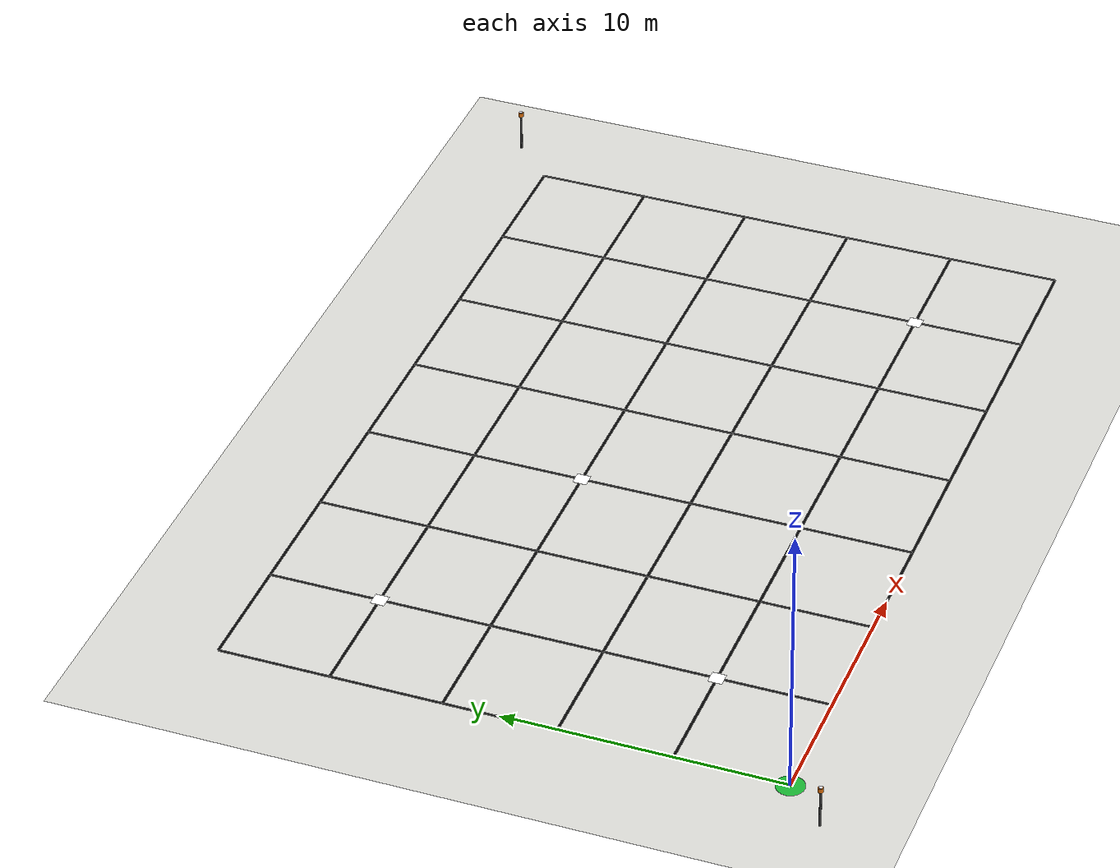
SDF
<?xml version="1.0" encoding="UTF-8"?>
<sdf version="1.9">
  <world name="competition_map">

    <physics type="ode">
      <max_step_size>0.004</max_step_size>
      <real_time_factor>1.0</real_time_factor>
      <real_time_update_rate>250</real_time_update_rate>
    </physics>
    <gravity>0 0 -9.8</gravity>
    <magnetic_field>6e-06 2.3e-05 -4.2e-05</magnetic_field>
    <atmosphere type="adiabatic"/>

    <scene>
      <grid>false</grid>
      <ambient>0.4 0.4 0.4 1</ambient>
      <background>0.7 0.7 0.7 1</background>
      <shadows>true</shadows>
    </scene>

    <!-- 바닥: 임무구역과 대비되는 밝은 회색 바닥 -->
    <model name="ground_plane">
      <static>true</static>
      <link name="link">
        <collision name="collision">
          <geometry>
            <plane>
              <normal>0 0 1</normal>
              <size>200 200</size>
            </plane>
          </geometry>
          <surface>
            <friction><ode/></friction>
            <bounce/>
            <contact/>
          </surface>
        </collision>
        <visual name="visual">
          <geometry>
            <plane>
              <normal>0 0 1</normal>
              <size>200 200</size>
            </plane>
          </geometry>
          <material>
            <ambient>0.85 0.85 0.83 1</ambient>
            <diffuse>0.85 0.85 0.83 1</diffuse>
            <specular>0.2 0.2 0.2 1</specular>
          </material>
        </visual>
        <pose>0 0 0 0 -0 0</pose>
        <inertial>
          <pose>0 0 0 0 -0 0</pose>
          <mass>1</mass>
          <inertia>
            <ixx>1</ixx><ixy>0</ixy><ixz>0</ixz>
            <iyy>1</iyy><iyz>0</iyz><izz>1</izz>
          </inertia>
        </inertial>
        <enable_wind>false</enable_wind>
      </link>
      <pose>0 0 0 0 -0 0</pose>
      <self_collide>false</self_collide>
    </model>

    <!-- 이착륙 지점(원점, world 좌표 0,0) 표시 패드 -->
    <model name="home_pad">
      <static>true</static>
      <pose>0 0 0.0015 0 0 0</pose>
      <link name="link">
        <visual name="visual">
          <geometry>
            <cylinder><radius>0.5</radius><length>0.001</length></cylinder>
          </geometry>
          <material>
            <ambient>0.1 0.7 0.2 1</ambient>
            <diffuse>0.1 0.7 0.2 1</diffuse>
          </material>
        </visual>
      </link>
    </model>

    <!-- 격자 구획선: 폭 0.1m, X 7칸 x 4.2857m, Y 5칸 x 4.0000m -->

    <model name="gridline_v_1">
      <static>true</static>
      <pose>0.0 10.0 0.001 0 0 0</pose>
      <link name="link">
        <visual name="visual">
          <geometry>
            <box><size>0.1 20.0 0.001</size></box>
          </geometry>
          <material>
            <ambient>0.02 0.02 0.02 1</ambient>
            <diffuse>0.02 0.02 0.02 1</diffuse>
            <specular>0.05 0.05 0.05 1</specular>
          </material>
        </visual>
      </link>
    </model>
    <model name="gridline_v_2">
      <static>true</static>
      <pose>4.2857 10.0 0.001 0 0 0</pose>
      <link name="link">
        <visual name="visual">
          <geometry>
            <box><size>0.1 20.0 0.001</size></box>
          </geometry>
          <material>
            <ambient>0.02 0.02 0.02 1</ambient>
            <diffuse>0.02 0.02 0.02 1</diffuse>
            <specular>0.05 0.05 0.05 1</specular>
          </material>
        </visual>
      </link>
    </model>
    <model name="gridline_v_3">
      <static>true</static>
      <pose>8.5714 10.0 0.001 0 0 0</pose>
      <link name="link">
        <visual name="visual">
          <geometry>
            <box><size>0.1 20.0 0.001</size></box>
          </geometry>
          <material>
            <ambient>0.02 0.02 0.02 1</ambient>
            <diffuse>0.02 0.02 0.02 1</diffuse>
            <specular>0.05 0.05 0.05 1</specular>
          </material>
        </visual>
      </link>
    </model>
    <model name="gridline_v_4">
      <static>true</static>
      <pose>12.8571 10.0 0.001 0 0 0</pose>
      <link name="link">
        <visual name="visual">
          <geometry>
            <box><size>0.1 20.0 0.001</size></box>
          </geometry>
          <material>
            <ambient>0.02 0.02 0.02 1</ambient>
            <diffuse>0.02 0.02 0.02 1</diffuse>
            <specular>0.05 0.05 0.05 1</specular>
          </material>
        </visual>
      </link>
    </model>
    <model name="gridline_v_5">
      <static>true</static>
      <pose>17.1429 10.0 0.001 0 0 0</pose>
      <link name="link">
        <visual name="visual">
          <geometry>
            <box><size>0.1 20.0 0.001</size></box>
          </geometry>
          <material>
            <ambient>0.02 0.02 0.02 1</ambient>
            <diffuse>0.02 0.02 0.02 1</diffuse>
            <specular>0.05 0.05 0.05 1</specular>
          </material>
        </visual>
      </link>
    </model>
    <model name="gridline_v_6">
      <static>true</static>
      <pose>21.4286 10.0 0.001 0 0 0</pose>
      <link name="link">
        <visual name="visual">
          <geometry>
            <box><size>0.1 20.0 0.001</size></box>
          </geometry>
          <material>
            <ambient>0.02 0.02 0.02 1</ambient>
            <diffuse>0.02 0.02 0.02 1</diffuse>
            <specular>0.05 0.05 0.05 1</specular>
          </material>
        </visual>
      </link>
    </model>
    <model name="gridline_v_7">
      <static>true</static>
      <pose>25.7143 10.0 0.001 0 0 0</pose>
      <link name="link">
        <visual name="visual">
          <geometry>
            <box><size>0.1 20.0 0.001</size></box>
          </geometry>
          <material>
            <ambient>0.02 0.02 0.02 1</ambient>
            <diffuse>0.02 0.02 0.02 1</diffuse>
            <specular>0.05 0.05 0.05 1</specular>
          </material>
        </visual>
      </link>
    </model>
    <model name="gridline_v_8">
      <static>true</static>
      <pose>30.0 10.0 0.001 0 0 0</pose>
      <link name="link">
        <visual name="visual">
          <geometry>
            <box><size>0.1 20.0 0.001</size></box>
          </geometry>
          <material>
            <ambient>0.02 0.02 0.02 1</ambient>
            <diffuse>0.02 0.02 0.02 1</diffuse>
            <specular>0.05 0.05 0.05 1</specular>
          </material>
        </visual>
      </link>
    </model>
    <model name="gridline_h_9">
      <static>true</static>
      <pose>15.0 0.0 0.001 0 0 0</pose>
      <link name="link">
        <visual name="visual">
          <geometry>
            <box><size>30.0 0.1 0.001</size></box>
          </geometry>
          <material>
            <ambient>0.02 0.02 0.02 1</ambient>
            <diffuse>0.02 0.02 0.02 1</diffuse>
            <specular>0.05 0.05 0.05 1</specular>
          </material>
        </visual>
      </link>
    </model>
    <model name="gridline_h_10">
      <static>true</static>
      <pose>15.0 4.0 0.001 0 0 0</pose>
      <link name="link">
        <visual name="visual">
          <geometry>
            <box><size>30.0 0.1 0.001</size></box>
          </geometry>
          <material>
            <ambient>0.02 0.02 0.02 1</ambient>
            <diffuse>0.02 0.02 0.02 1</diffuse>
            <specular>0.05 0.05 0.05 1</specular>
          </material>
        </visual>
      </link>
    </model>
    <model name="gridline_h_11">
      <static>true</static>
      <pose>15.0 8.0 0.001 0 0 0</pose>
      <link name="link">
        <visual name="visual">
          <geometry>
            <box><size>30.0 0.1 0.001</size></box>
          </geometry>
          <material>
            <ambient>0.02 0.02 0.02 1</ambient>
            <diffuse>0.02 0.02 0.02 1</diffuse>
            <specular>0.05 0.05 0.05 1</specular>
          </material>
        </visual>
      </link>
    </model>
    <model name="gridline_h_12">
      <static>true</static>
      <pose>15.0 12.0 0.001 0 0 0</pose>
      <link name="link">
        <visual name="visual">
          <geometry>
            <box><size>30.0 0.1 0.001</size></box>
          </geometry>
          <material>
            <ambient>0.02 0.02 0.02 1</ambient>
            <diffuse>0.02 0.02 0.02 1</diffuse>
            <specular>0.05 0.05 0.05 1</specular>
          </material>
        </visual>
      </link>
    </model>
    <model name="gridline_h_13">
      <static>true</static>
      <pose>15.0 16.0 0.001 0 0 0</pose>
      <link name="link">
        <visual name="visual">
          <geometry>
            <box><size>30.0 0.1 0.001</size></box>
          </geometry>
          <material>
            <ambient>0.02 0.02 0.02 1</ambient>
            <diffuse>0.02 0.02 0.02 1</diffuse>
            <specular>0.05 0.05 0.05 1</specular>
          </material>
        </visual>
      </link>
    </model>
    <model name="gridline_h_14">
      <static>true</static>
      <pose>15.0 20.0 0.001 0 0 0</pose>
      <link name="link">
        <visual name="visual">
          <geometry>
            <box><size>30.0 0.1 0.001</size></box>
          </geometry>
          <material>
            <ambient>0.02 0.02 0.02 1</ambient>
            <diffuse>0.02 0.02 0.02 1</diffuse>
            <specular>0.05 0.05 0.05 1</specular>
          </material>
        </visual>
      </link>
    </model>

    <!-- 경로점 ArUco 마커 4개 (DICT_4X4_50, 0.5m x 0.5m), 경계에서 1셀 이상 안쪽 -->

    <!-- 경로점 id=1: (4.2857, 4.0) -->
    <include>
      <uri>model://aruco_marker_id1_at_x4_y4</uri>
      <name>aruco_marker_id1_at_x4_y4</name>
      <pose>4.2857 4.0 0.002 0 0 0</pose>
    </include>
    <!-- 경로점 id=2: (4.2857, 16.0) -->
    <include>
      <uri>model://aruco_marker_id2_at_x4_y16</uri>
      <name>aruco_marker_id2_at_x4_y16</name>
      <pose>4.2857 16.0 0.002 0 0 0</pose>
    </include>
    <!-- 경로점 id=3: (25.7143, 4.0) -->
    <include>
      <uri>model://aruco_marker_id3_at_x26_y4</uri>
      <name>aruco_marker_id3_at_x26_y4</name>
      <pose>25.7143 4.0 0.002 0 0 0</pose>
    </include>
    <!-- 경로점 id=4: (12.8571, 12.0) -->
    <include>
      <uri>model://aruco_marker_id4_at_x13_y12</uri>
      <name>aruco_marker_id4_at_x13_y12</name>
      <pose>12.8571 12.0 0.002 0 0 0</pose>
    </include>

    <!-- 지상 고정 LiDAR 2대 (측위용, 33x23 금지구역 밖, 동쪽+북쪽 직교 배치) -->

    <!-- 지상 고정 LiDAR: ground_lidar_1 @ world (-1.5, -1.5, 1.5), yaw=0.6094 rad, topic /ouster1/points -->
    <model name="ground_lidar_1">
      <static>true</static>
      <pose>-1.5 -1.5 1.5 0.0 0.0 0.6094</pose>
      <link name="base">
        <visual name="pole">
          <pose>0 0 -0.75 0 0 0</pose>
          <geometry>
            <cylinder><radius>0.04</radius><length>1.5</length></cylinder>
          </geometry>
          <material>
            <ambient>0.15 0.15 0.15 1</ambient>
            <diffuse>0.25 0.25 0.25 1</diffuse>
          </material>
        </visual>
        <visual name="housing">
          <geometry>
            <cylinder><radius>0.09</radius><length>0.16</length></cylinder>
          </geometry>
          <material>
            <ambient>0.9 0.45 0.05 1</ambient>
            <diffuse>1.0 0.5 0.05 1</diffuse>
            <specular>0.3 0.3 0.3 1</specular>
            <emissive>0.3 0.15 0.0 1</emissive>
          </material>
        </visual>
        <visual name="cap">
          <pose>0 0 0.09 0 0 0</pose>
          <geometry>
            <cylinder><radius>0.07</radius><length>0.02</length></cylinder>
          </geometry>
          <material>
            <ambient>0.8 0.8 0.85 1</ambient>
            <diffuse>0.9 0.9 0.95 1</diffuse>
          </material>
        </visual>
        <sensor name="ground_lidar_1_lidar" type="gpu_lidar">
          <always_on>1</always_on>
          <update_rate>10</update_rate>
          <topic>/ouster1</topic>
          <gz_frame_id>ground_lidar_1_frame</gz_frame_id>
          <visualize>true</visualize>
          <lidar>
            <scan>
              <horizontal>
                <samples>1024</samples>
                <resolution>1</resolution>
                <min_angle>-3.14159265358979</min_angle>
                <max_angle>3.14159265358979</max_angle>
              </horizontal>
              <vertical>
                <samples>64</samples>
                <resolution>1</resolution>
                <min_angle>-0.79234</min_angle>
                <max_angle>0.79234</max_angle>
              </vertical>
            </scan>
            <range>
              <min>0.3</min>
              <max>35.0</max>
              <resolution>0.001</resolution>
            </range>
            <noise>
              <type>gaussian</type>
              <mean>0.0</mean>
              <stddev>0.008</stddev>
            </noise>
          </lidar>
        </sensor>
      </link>
    </model>
    <!-- 지상 고정 LiDAR: ground_lidar_2 @ world (31.5, 21.5, 1.5), yaw=-2.5322 rad, topic /ouster2/points -->
    <model name="ground_lidar_2">
      <static>true</static>
      <pose>31.5 21.5 1.5 0.0 0.0 -2.5322</pose>
      <link name="base">
        <visual name="pole">
          <pose>0 0 -0.75 0 0 0</pose>
          <geometry>
            <cylinder><radius>0.04</radius><length>1.5</length></cylinder>
          </geometry>
          <material>
            <ambient>0.15 0.15 0.15 1</ambient>
            <diffuse>0.25 0.25 0.25 1</diffuse>
          </material>
        </visual>
        <visual name="housing">
          <geometry>
            <cylinder><radius>0.09</radius><length>0.16</length></cylinder>
          </geometry>
          <material>
            <ambient>0.9 0.45 0.05 1</ambient>
            <diffuse>1.0 0.5 0.05 1</diffuse>
            <specular>0.3 0.3 0.3 1</specular>
            <emissive>0.3 0.15 0.0 1</emissive>
          </material>
        </visual>
        <visual name="cap">
          <pose>0 0 0.09 0 0 0</pose>
          <geometry>
            <cylinder><radius>0.07</radius><length>0.02</length></cylinder>
          </geometry>
          <material>
            <ambient>0.8 0.8 0.85 1</ambient>
            <diffuse>0.9 0.9 0.95 1</diffuse>
          </material>
        </visual>
        <sensor name="ground_lidar_2_lidar" type="gpu_lidar">
          <always_on>1</always_on>
          <update_rate>10</update_rate>
          <topic>/ouster2</topic>
          <gz_frame_id>ground_lidar_2_frame</gz_frame_id>
          <visualize>true</visualize>
          <lidar>
            <scan>
              <horizontal>
                <samples>1024</samples>
                <resolution>1</resolution>
                <min_angle>-3.14159265358979</min_angle>
                <max_angle>3.14159265358979</max_angle>
              </horizontal>
              <vertical>
                <samples>64</samples>
                <resolution>1</resolution>
                <min_angle>-0.79234</min_angle>
                <max_angle>0.79234</max_angle>
              </vertical>
            </scan>
            <range>
              <min>0.3</min>
              <max>35.0</max>
              <resolution>0.001</resolution>
            </range>
            <noise>
              <type>gaussian</type>
              <mean>0.0</mean>
              <stddev>0.008</stddev>
            </noise>
          </lidar>
        </sensor>
      </link>
    </model>

    <light name="sunUTC" type="directional">
      <pose>0 0 500 0 -0 0</pose>
      <cast_shadows>true</cast_shadows>
      <intensity>1</intensity>
      <direction>0.001 0.625 -0.78</direction>
      <diffuse>0.904 0.904 0.904 1</diffuse>
      <specular>0.271 0.271 0.271 1</specular>
      <attenuation>
        <range>2000</range>
        <linear>0</linear>
        <constant>1</constant>
        <quadratic>0</quadratic>
      </attenuation>
      <spot>
        <inner_angle>0</inner_angle>
        <outer_angle>0</outer_angle>
        <falloff>0</falloff>
      </spot>
    </light>

    <spherical_coordinates>
      <surface_model>EARTH_WGS84</surface_model>
      <world_frame_orientation>ENU</world_frame_orientation>
      <latitude_deg>47.397971057728974</latitude_deg>
      <longitude_deg>8.546163739800146</longitude_deg>
      <elevation>0</elevation>
    </spherical_coordinates>
  </world>
</sdf>

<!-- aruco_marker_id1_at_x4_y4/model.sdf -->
<sdf version="1.9">
  <model name="aruco_marker_id1_at_x4_y4">
    <static>true</static>
    <pose>0 0 0.001 0 0 0</pose>
    <link name="base">
      <visual name="base_visual">
        <geometry>
          <plane>
            <normal>0 0 1</normal>
            <size>0.5 0.5</size>
          </plane>
        </geometry>
        <material>
          <diffuse>1 1 1 1</diffuse>
          <specular>0.2 0.2 0.2 1</specular>
          <pbr>
            <metal>
              <albedo_map>model://aruco_marker_id1_at_x4_y4/marker.png</albedo_map>
            </metal>
          </pbr>
        </material>
      </visual>
    </link>
  </model>
</sdf>

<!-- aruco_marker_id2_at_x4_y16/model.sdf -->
<sdf version="1.9">
  <model name="aruco_marker_id2_at_x4_y16">
    <static>true</static>
    <pose>0 0 0.001 0 0 0</pose>
    <link name="base">
      <visual name="base_visual">
        <geometry>
          <plane>
            <normal>0 0 1</normal>
            <size>0.5 0.5</size>
          </plane>
        </geometry>
        <material>
          <diffuse>1 1 1 1</diffuse>
          <specular>0.2 0.2 0.2 1</specular>
          <pbr>
            <metal>
              <albedo_map>model://aruco_marker_id2_at_x4_y16/marker.png</albedo_map>
            </metal>
          </pbr>
        </material>
      </visual>
    </link>
  </model>
</sdf>

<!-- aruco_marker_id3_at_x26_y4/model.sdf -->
<sdf version="1.9">
  <model name="aruco_marker_id3_at_x26_y4">
    <static>true</static>
    <pose>0 0 0.001 0 0 0</pose>
    <link name="base">
      <visual name="base_visual">
        <geometry>
          <plane>
            <normal>0 0 1</normal>
            <size>0.5 0.5</size>
          </plane>
        </geometry>
        <material>
          <diffuse>1 1 1 1</diffuse>
          <specular>0.2 0.2 0.2 1</specular>
          <pbr>
            <metal>
              <albedo_map>model://aruco_marker_id3_at_x26_y4/marker.png</albedo_map>
            </metal>
          </pbr>
        </material>
      </visual>
    </link>
  </model>
</sdf>

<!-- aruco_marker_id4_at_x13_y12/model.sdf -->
<sdf version="1.9">
  <model name="aruco_marker_id4_at_x13_y12">
    <static>true</static>
    <pose>0 0 0.001 0 0 0</pose>
    <link name="base">
      <visual name="base_visual">
        <geometry>
          <plane>
            <normal>0 0 1</normal>
            <size>0.5 0.5</size>
          </plane>
        </geometry>
        <material>
          <diffuse>1 1 1 1</diffuse>
          <specular>0.2 0.2 0.2 1</specular>
          <pbr>
            <metal>
              <albedo_map>model://aruco_marker_id4_at_x13_y12/marker.png</albedo_map>
            </metal>
          </pbr>
        </material>
      </visual>
    </link>
  </model>
</sdf>
